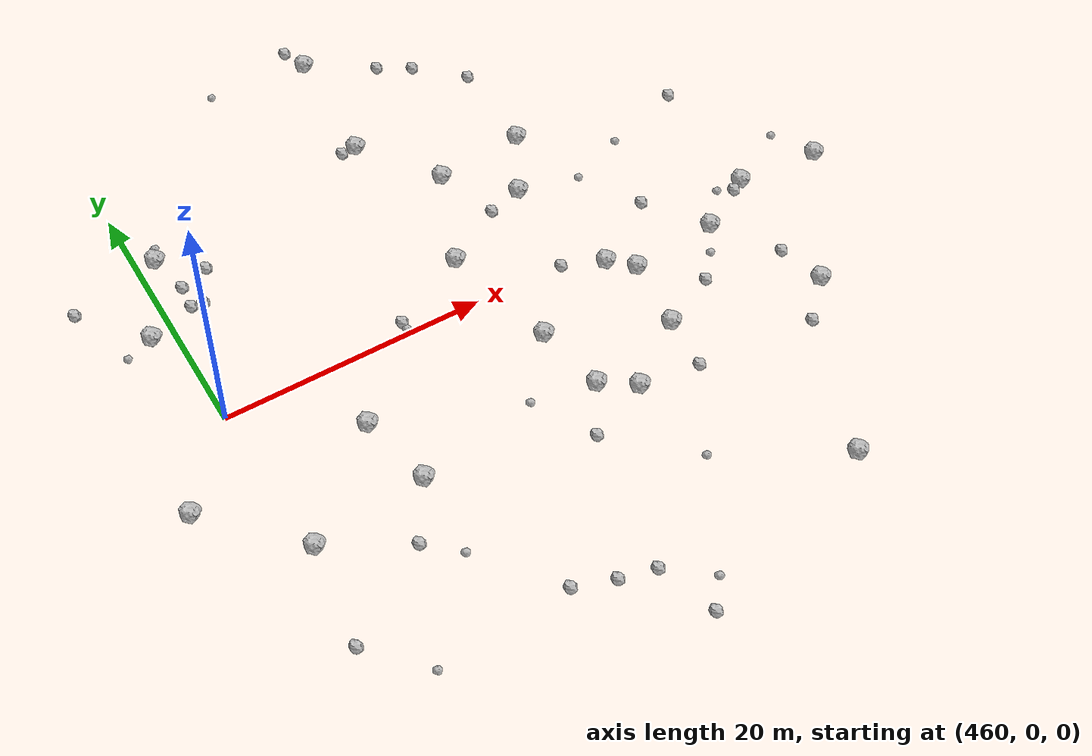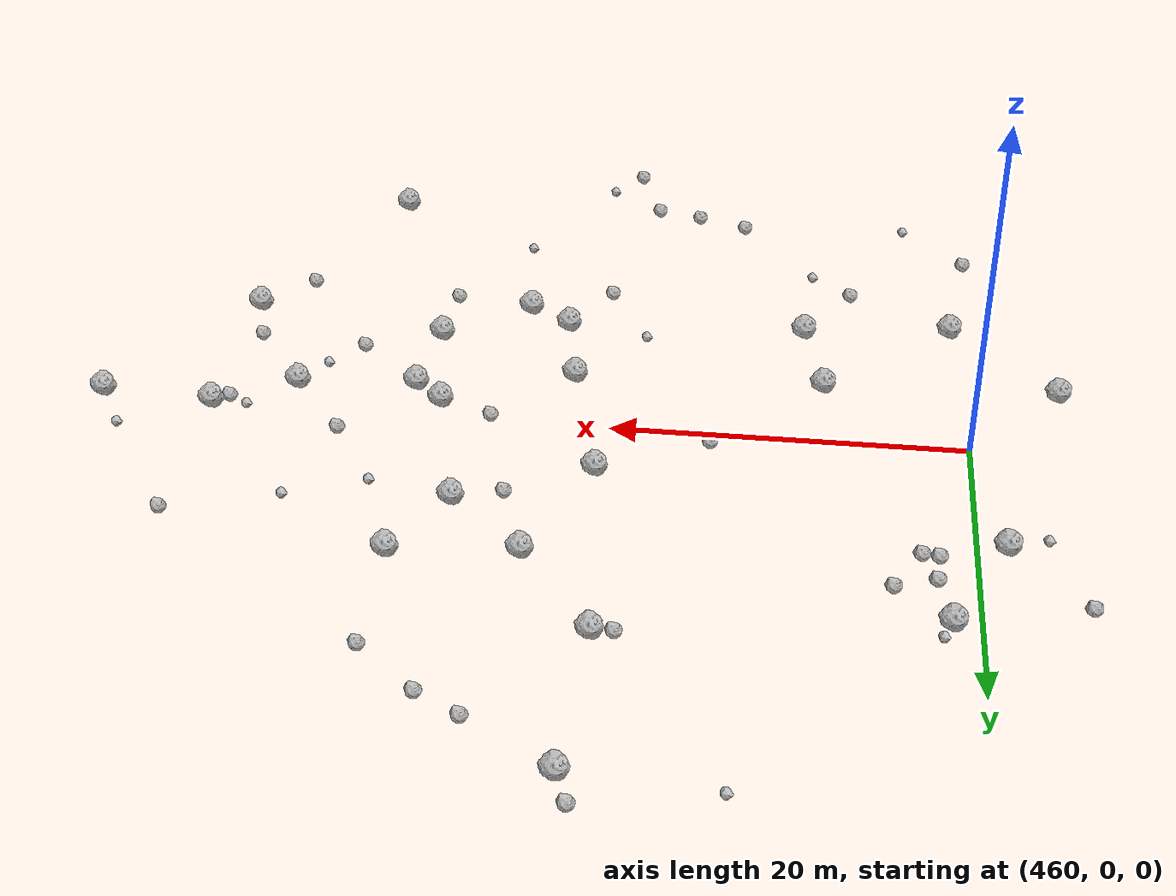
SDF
<sdf version="1.6">
 <world name="default">
  <include><uri>model://sun</uri></include>
  <model name="rock1_12_4">
   <include><uri>model://rock1</uri><pose>487.83757054015797 7.328106493092946 0.5 0 0 0</pose></include>
  </model>
  <model name="rock1_12_5">
   <include><uri>model://rock1</uri><pose>480.4549591239091 3.943217984306905 0.5 0 0 0</pose></include>
  </model>
  <model name="rock1_12_6">
   <include><uri>model://rock1</uri><pose>498.33750945098325 -2.6315197866507845 0.5 0 0 0</pose></include>
  </model>
  <model name="rock1_12_7">
   <include><uri>model://rock1</uri><pose>460.7577766987774 -11.948926873604371 0.5 0 0 0</pose></include>
  </model>
  <model name="rock1_12_8">
   <include><uri>model://rock1</uri><pose>468.17487096796094 -5.387825957736364 0.5 0 0 0</pose></include>
  </model>
  <model name="rock1_12_9">
   <include><uri>model://rock1</uri><pose>509.295358911364 -0.7018604522093312 0.5 0 0 0</pose></include>
  </model>
  <model name="rock1_12_10">
   <include><uri>model://rock1</uri><pose>490.85438145181337 -8.552056014927828 0.5 0 0 0</pose></include>
  </model>
  <model name="rock1_12_11">
   <include><uri>model://rock1</uri><pose>490.5350682657495 12.04457318742056 0.5 0 0 0</pose></include>
  </model>
  <model name="rock1_12_12">
   <include><uri>model://rock1</uri><pose>502.8421043920499 -0.1719653611517309 0.5 0 0 0</pose></include>
  </model>
  <model name="rock1_12_13">
   <include><uri>model://rock1</uri><pose>461.506134937569 14.78825537791002 0.5 0 0 0</pose></include>
  </model>
  <model name="rock1_12_14">
   <include><uri>model://rock1</uri><pose>479.9071164200479 27.065458096027186 0.5 0 0 0</pose></include>
  </model>
  <model name="rock1_12_15">
   <include><uri>model://rock1</uri><pose>502.397841342475 -10.675135914856053 0.5 0 0 0</pose></include>
  </model>
  <model name="rock1_12_16">
   <include><uri>model://rock1</uri><pose>482.4861943137612 -4.950082836453991 0.5 0 0 0</pose></include>
  </model>
  <model name="rock1_12_17">
   <include><uri>model://rock1</uri><pose>495.5642801569812 -23.773918275119605 0.5 0 0 0</pose></include>
  </model>
  <model name="rock1_12_18">
   <include><uri>model://rock1</uri><pose>454.8052194898213 -5.807965337285161 0.5 0 0 0</pose></include>
  </model>
  <model name="rock1_12_19">
   <include><uri>model://rock1</uri><pose>479.3336946356343 17.289835683523428 0.5 0 0 0</pose></include>
  </model>
  <model name="rock1_12_20">
   <include><uri>model://rock1</uri><pose>491.5106495533822 -3.188497715655224 0.5 0 0 0</pose></include>
  </model>
  <model name="rock1_12_21">
   <include><uri>model://rock1</uri><pose>469.38529910547516 -11.013359283629502 0.5 0 0 0</pose></include>
  </model>
  <model name="rock1_12_22">
   <include><uri>model://rock1</uri><pose>483.57192039312287 11.419543532031241 0.5 0 0 0</pose></include>
  </model>
  <model name="rock1_12_23">
   <include><uri>model://rock1</uri><pose>458.4608003642617 8.519654866941174 0.5 0 0 0</pose></include>
  </model>
  <model name="rock1_12_24">
   <include><uri>model://rock1</uri><pose>483.4235564282067 -10.324699356703857 0.5 0 0 0</pose></include>
  </model>
  <model name="rock1_12_25">
   <include><uri>model://rock1</uri><pose>489.84011924326734 -1.6204231485818497 0.5 0 0 0</pose></include>
  </model>
  <model name="rock1_12_26">
   <include><uri>model://rock1</uri><pose>485.9015681163382 -11.979758129229861 0.5 0 0 0</pose></include>
  </model>
  <model name="rock2_12_0">
   <include><uri>model://rock2</uri><pose>464.3889567703051 12.393691424236266 0.3 0 0 0</pose></include>
  </model>
  <model name="rock2_12_1">
   <include><uri>model://rock2</uri><pose>480.4521973593147 -28.755032111036474 0.3 0 0 0</pose></include>
  </model>
  <model name="rock2_12_2">
   <include><uri>model://rock2</uri><pose>466.63870338929223 -15.161507869398772 0.3 0 0 0</pose></include>
  </model>
  <model name="rock2_12_3">
   <include><uri>model://rock2</uri><pose>503.0995499686121 9.938552003340867 0.3 0 0 0</pose></include>
  </model>
  <model name="rock2_12_4">
   <include><uri>model://rock2</uri><pose>487.16814239357683 22.60199855731632 0.3 0 0 0</pose></include>
  </model>
  <model name="rock2_12_5">
   <include><uri>model://rock2</uri><pose>474.31493699018256 0.9816686790618334 0.3 0 0 0</pose></include>
  </model>
  <model name="rock2_12_6">
   <include><uri>model://rock2</uri><pose>501.43936439679965 -7.1712306528202525 0.3 0 0 0</pose></include>
  </model>
  <model name="rock2_12_7">
   <include><uri>model://rock2</uri><pose>485.05580957271906 6.652468307665728 0.3 0 0 0</pose></include>
  </model>
  <model name="rock2_12_8">
   <include><uri>model://rock2</uri><pose>490.44343518414684 -12.55213265114531 0.3 0 0 0</pose></include>
  </model>
  <model name="rock2_12_9">
   <include><uri>model://rock2</uri><pose>454.4792964401777 13.136929553250475 0.3 0 0 0</pose></include>
  </model>
  <model name="rock2_12_10">
   <include><uri>model://rock2</uri><pose>484.74259076204595 24.017776108757104 0.3 0 0 0</pose></include>
  </model>
  <model name="rock2_12_11">
   <include><uri>model://rock2</uri><pose>486.76325917730696 -0.3136082930917965 0.3 0 0 0</pose></include>
  </model>
  <model name="rock2_12_12">
   <include><uri>model://rock2</uri><pose>481.0997213425444 -13.904378101276215 0.3 0 0 0</pose></include>
  </model>
  <model name="rock2_12_13">
   <include><uri>model://rock2</uri><pose>501.8445829839177 -0.646487826125032 0.3 0 0 0</pose></include>
  </model>
  <model name="rock2_12_14">
   <include><uri>model://rock2</uri><pose>476.34211637282823 -23.749457309761503 0.3 0 0 0</pose></include>
  </model>
  <model name="rock2_12_15">
   <include><uri>model://rock2</uri><pose>495.126017683658 -6.582997333627532 0.3 0 0 0</pose></include>
  </model>
  <model name="rock2_12_16">
   <include><uri>model://rock2</uri><pose>478.99543575086807 -24.397843767407366 0.3 0 0 0</pose></include>
  </model>
  <model name="rock2_12_17">
   <include><uri>model://rock2</uri><pose>478.12000785515824 17.310081014673813 0.3 0 0 0</pose></include>
  </model>
  <model name="rock2_12_18">
   <include><uri>model://rock2</uri><pose>479.13535189248404 29.110772520523277 0.3 0 0 0</pose></include>
  </model>
  <model name="rock2_12_19">
   <include><uri>model://rock2</uri><pose>499.5612473677244 -13.385386750164098 0.3 0 0 0</pose></include>
  </model>
  <model name="rock2_12_20">
   <include><uri>model://rock2</uri><pose>490.5046818785892 19.561071081732926 0.3 0 0 0</pose></include>
  </model>
  <model name="rock2_12_21">
   <include><uri>model://rock2</uri><pose>462.15315603786877 11.645492210425694 0.3 0 0 0</pose></include>
  </model>
  <model name="rock2_12_22">
   <include><uri>model://rock2</uri><pose>473.3976601995313 -22.755360777587335 0.3 0 0 0</pose></include>
  </model>
  <model name="rock2_12_23">
   <include><uri>model://rock2</uri><pose>459.66789518510035 -19.575002197780634 0.3 0 0 0</pose></include>
  </model>
  <model name="rock2_12_24">
   <include><uri>model://rock2</uri><pose>495.1267656430563 1.7870642942554618 0.3 0 0 0</pose></include>
  </model>
  <model name="rock2_12_25">
   <include><uri>model://rock2</uri><pose>462.0039912993405 9.761065814776899 0.3 0 0 0</pose></include>
  </model>
  <model name="rock2_12_26">
   <include><uri>model://rock2</uri><pose>462.8991798859236 9.646394423244502 0.3 0 0 0</pose></include>
  </model>
  <model name="rock3_12_0">
   <include><uri>model://rock3</uri><pose>463.2711918305079 -23.49269276082873 0.2 0 0 0</pose></include>
  </model>
  <model name="rock3_12_1">
   <include><uri>model://rock3</uri><pose>478.61051840847796 -9.410275817862626 0.2 0 0 0</pose></include>
  </model>
  <model name="rock3_12_2">
   <include><uri>model://rock3</uri><pose>500.7062104421971 -0.09705793569708376 0.2 0 0 0</pose></include>
  </model>
  <model name="rock3_12_3">
   <include><uri>model://rock3</uri><pose>486.61242554368755 -18.935908823737247 0.2 0 0 0</pose></include>
  </model>
  <model name="rock3_12_4">
   <include><uri>model://rock3</uri><pose>474.3496476473113 0.3158625428474302 0.2 0 0 0</pose></include>
  </model>
  <model name="rock3_12_5">
   <include><uri>model://rock3</uri><pose>456.2394566184326 7.744916411425137 0.2 0 0 0</pose></include>
  </model>
  <model name="rock3_12_6">
   <include><uri>model://rock3</uri><pose>496.88887010864335 -4.722643389300284 0.2 0 0 0</pose></include>
  </model>
  <model name="rock3_12_7">
   <include><uri>model://rock3</uri><pose>482.10513395146216 -26.820452893948215 0.2 0 0 0</pose></include>
  </model>
  <model name="rock3_12_8">
   <include><uri>model://rock3</uri><pose>468.924866197012 -17.25212575215196 0.2 0 0 0</pose></include>
  </model>
  <model name="rock3_12_9">
   <include><uri>model://rock3</uri><pose>472.0139824641497 27.619490331255065 0.2 0 0 0</pose></include>
  </model>
  <model name="rock3_12_10">
   <include><uri>model://rock3</uri><pose>496.848727127243 7.976721432022707 0.2 0 0 0</pose></include>
  </model>
  <model name="rock3_12_11">
   <include><uri>model://rock3</uri><pose>492.44366162652295 6.251094136843548 0.2 0 0 0</pose></include>
  </model>
  <model name="rock3_12_12">
   <include><uri>model://rock3</uri><pose>507.55358404430086 2.4517306404487726 0.2 0 0 0</pose></include>
  </model>
  <model name="rock3_12_13">
   <include><uri>model://rock3</uri><pose>461.92474188337314 15.90340355635496 0.2 0 0 0</pose></include>
  </model>
 </world>
</sdf>
